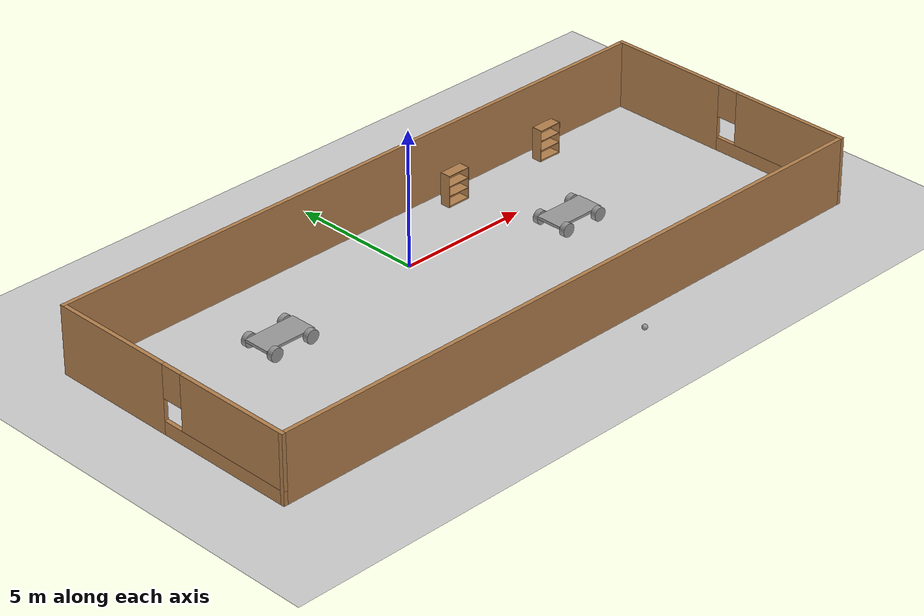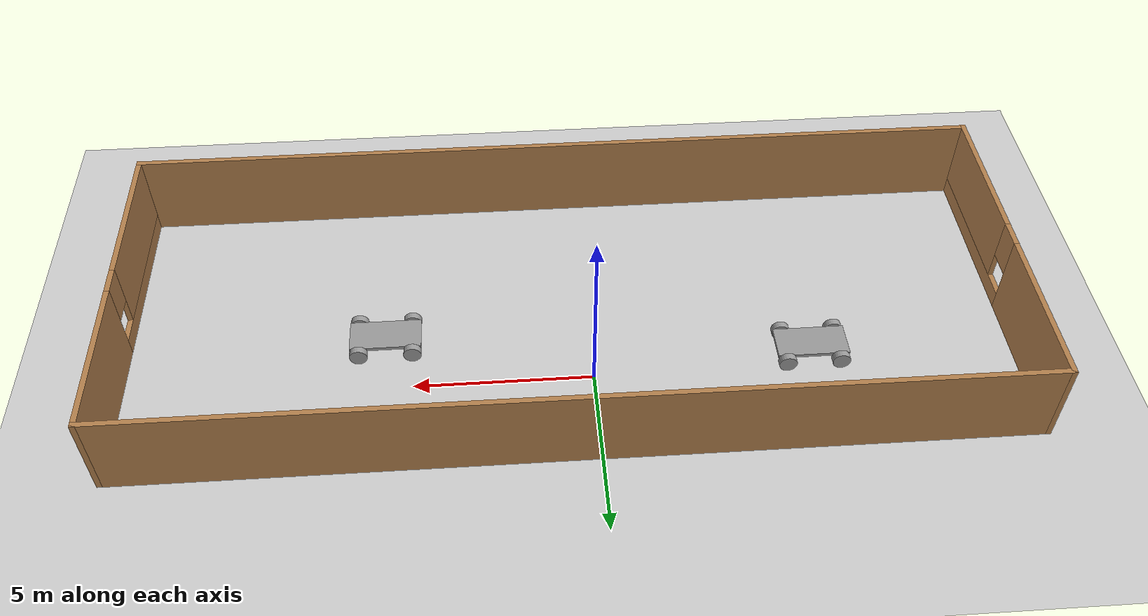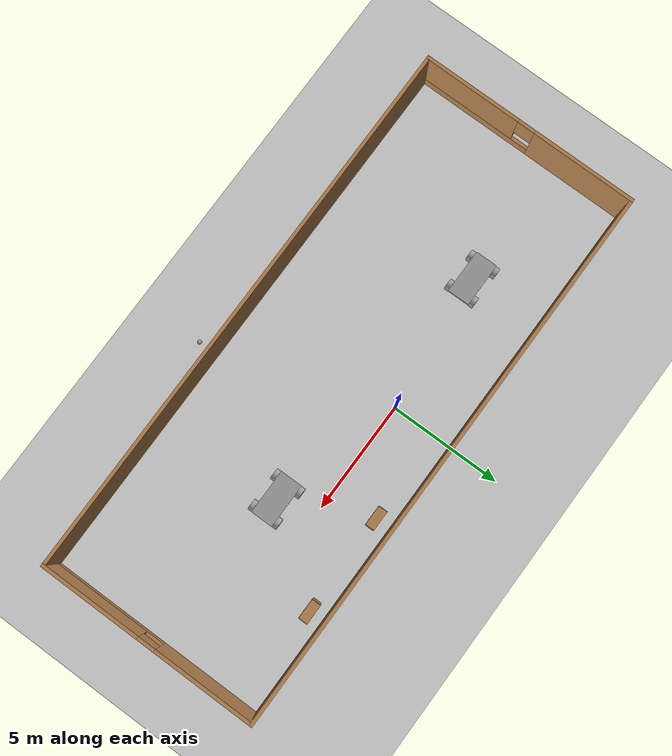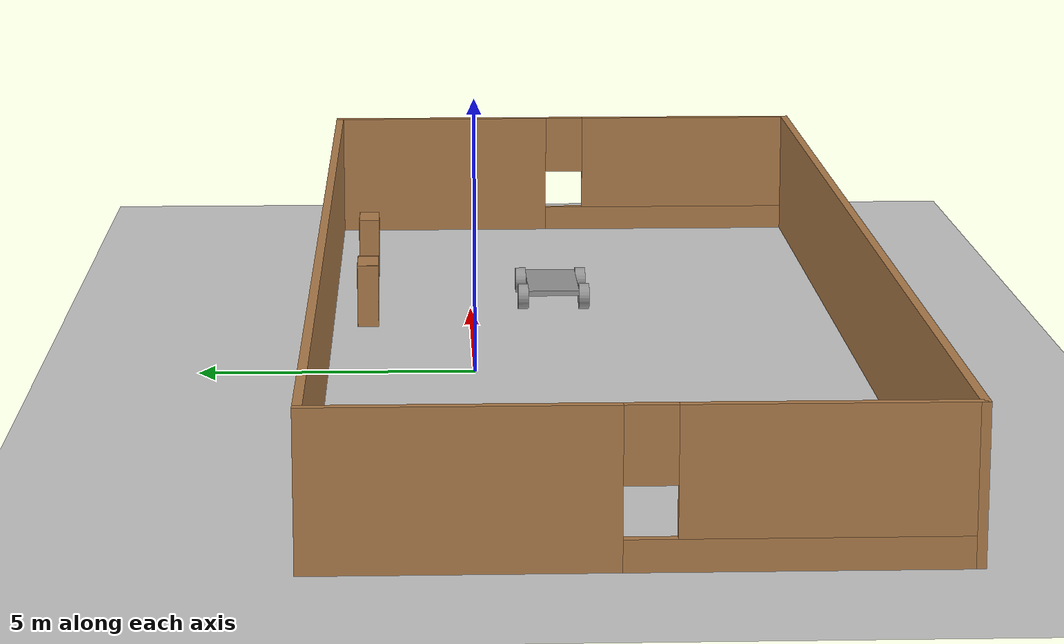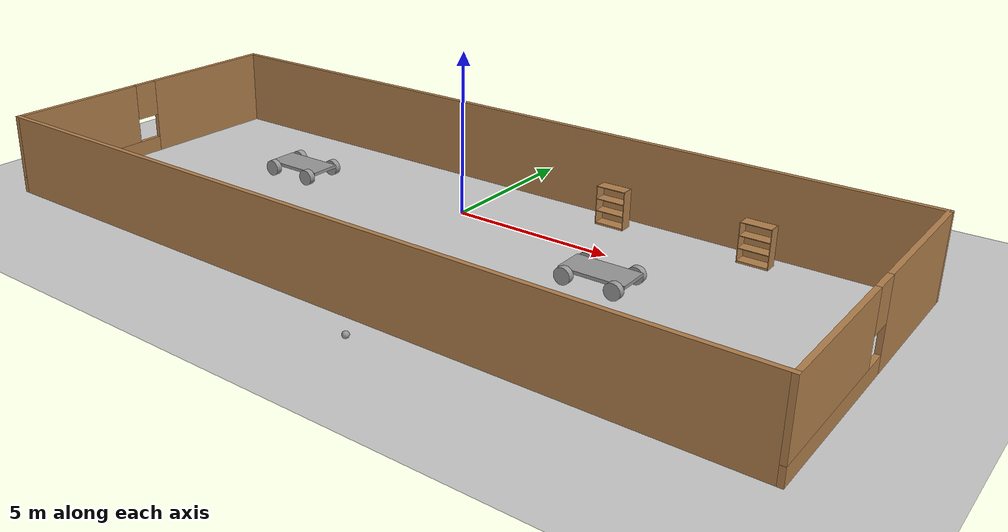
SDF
<sdf version="1.6">
 <world name="default">
  <plugin name="hello" filename="libhello.so"/>
  <light name="sun" type="directional">
   <pose>0 0 10 0 -0 0</pose>
   <diffuse>0.8 0.8 0.8 1</diffuse>
   <specular>0.2 0.2 0.2 1</specular>
   <attenuation>
    <range>1000</range>
    <constant>0.9</constant>
    <linear>0.01</linear>
    <quadratic>0.001</quadratic>
   </attenuation>
   <direction>-0.5 0.1 -0.9</direction>
  </light>
  <model name="ground_plane">
   <static>1</static>
   <link name="link">
    <collision name="collision">
     <geometry><plane><normal>0 0 1</normal><size>100 100</size></plane></geometry>
     <surface>
      <contact><collide_bitmask>65535</collide_bitmask></contact>
      <friction><ode><mu>100</mu><mu2>50</mu2></ode></friction>
     </surface>
    </collision>
    <visual name="visual">
     <cast_shadows>0</cast_shadows>
     <geometry><plane><normal>0 0 1</normal><size>100 100</size></plane></geometry>
     <material>
      <script><uri>file://media/materials/scripts/gazebo.material</uri><name>Gazebo/Grey</name></script>
     </material>
    </visual>
   </link>
  </model>
  <gravity>0 0 -9.8</gravity>
  <magnetic_field>6e-06 2.3e-05 -4.2e-05</magnetic_field>
  <atmosphere type="adiabatic"/>
  <physics name="default_physics" default="0" type="ode">
   <max_step_size>0.001</max_step_size>
   <real_time_factor>1</real_time_factor>
   <real_time_update_rate>1000</real_time_update_rate>
  </physics>
  <scene><ambient>0.4 0.4 0.4 1</ambient><background>0.7 0.7 0.7 1</background><shadows>1</shadows></scene>
  <audio><device>default</device></audio>
  <spherical_coordinates>
   <surface_model>EARTH_WGS84</surface_model>
   <latitude_deg>0</latitude_deg>
   <longitude_deg>0</longitude_deg>
   <elevation>0</elevation>
   <heading_deg>0</heading_deg>
  </spherical_coordinates>
  <model name="robot">
   <link name="link_0">
    <inertial>
     <mass>1</mass>
     <inertia>
      <ixx>0.166667</ixx>
      <ixy>0</ixy>
      <ixz>0</ixz>
      <iyy>0.166667</iyy>
      <iyz>0</iyz>
      <izz>0.166667</izz>
     </inertia>
    </inertial>
    <pose>-0.060277 0.077845 0.5 0 -0 0</pose>
    <visual name="visual">
     <geometry><box><size>2 1 0.1</size></box></geometry>
     <material>
      <lighting>1</lighting>
      <script><uri>file://media/materials/scripts/gazebo.material</uri><name>Gazebo/Grey</name></script>
      <shader type="pixel"><normal_map>__default__</normal_map></shader>
      <ambient>0.3 0.3 0.3 1</ambient>
      <diffuse>0.7 0.7 0.7 1</diffuse>
      <specular>0.01 0.01 0.01 1</specular>
      <emissive>0 0 0 1</emissive>
     </material>
    </visual>
    <collision name="collision_5">
     <pose>0 0 0.5 0 -0 0</pose>
     <geometry><box><size>1.5 0.8 0.8</size></box></geometry>
     <surface>
      <friction>
       <ode><mu>1</mu><mu2>1</mu2><fdir1>0 0 0</fdir1><slip1>0</slip1><slip2>0</slip2></ode>
       <torsional>
        <coefficient>1</coefficient>
        <patch_radius>0</patch_radius>
        <surface_radius>0</surface_radius>
        <use_patch_radius>1</use_patch_radius>
        <ode><slip>0</slip></ode>
       </torsional>
      </friction>
      <bounce><restitution_coefficient>0</restitution_coefficient><threshold>1e+06</threshold></bounce>
      <contact>
       <collide_without_contact>0</collide_without_contact>
       <collide_without_contact_bitmask>1</collide_without_contact_bitmask>
       <collide_bitmask>1</collide_bitmask>
       <ode>
        <soft_cfm>0</soft_cfm>
        <soft_erp>0.2</soft_erp>
        <kp>1e+13</kp>
        <kd>1</kd>
        <max_vel>0.01</max_vel>
        <min_depth>0</min_depth>
       </ode>
       <bullet>
        <split_impulse>1</split_impulse>
        <split_impulse_penetration_threshold>-0.01</split_impulse_penetration_threshold>
        <soft_cfm>0</soft_cfm>
        <soft_erp>0.2</soft_erp>
        <kp>1e+13</kp>
        <kd>1</kd>
       </bullet>
      </contact>
     </surface>
    </collision>
    <collision name="collision">
     <geometry><box><size>2 1 0.1</size></box></geometry>
     <surface>
      <friction>
       <ode><mu>1</mu><mu2>1</mu2><fdir1>0 0 0</fdir1><slip1>0</slip1><slip2>0</slip2></ode>
       <torsional>
        <coefficient>1</coefficient>
        <patch_radius>0</patch_radius>
        <surface_radius>0</surface_radius>
        <use_patch_radius>1</use_patch_radius>
        <ode><slip>0</slip></ode>
       </torsional>
      </friction>
      <bounce><restitution_coefficient>0</restitution_coefficient><threshold>1e+06</threshold></bounce>
      <contact>
       <collide_without_contact>0</collide_without_contact>
       <collide_without_contact_bitmask>1</collide_without_contact_bitmask>
       <collide_bitmask>1</collide_bitmask>
       <ode>
        <soft_cfm>0</soft_cfm>
        <soft_erp>0.2</soft_erp>
        <kp>1e+13</kp>
        <kd>1</kd>
        <max_vel>0.01</max_vel>
        <min_depth>0</min_depth>
       </ode>
       <bullet>
        <split_impulse>1</split_impulse>
        <split_impulse_penetration_threshold>-0.01</split_impulse_penetration_threshold>
        <soft_cfm>0</soft_cfm>
        <soft_erp>0.2</soft_erp>
        <kp>1e+13</kp>
        <kd>1</kd>
       </bullet>
      </contact>
     </surface>
    </collision>
   </link>
   <link name="link_1">
    <inertial>
     <mass>1</mass>
     <inertia><ixx>0.145833</ixx><ixy>0</ixy><ixz>0</ixz><iyy>0.145833</iyy><iyz>0</iyz><izz>0.125</izz></inertia>
    </inertial>
    <pose>-0.810277 -0.522179 0.389986 1.5707 -0 0</pose>
    <visual name="visual">
     <geometry><cylinder><radius>0.25</radius><length>0.2</length></cylinder></geometry>
     <material>
      <lighting>1</lighting>
      <script><uri>file://media/materials/scripts/gazebo.material</uri><name>Gazebo/Grey</name></script>
      <shader type="pixel"><normal_map>__default__</normal_map></shader>
      <ambient>0.3 0.3 0.3 1</ambient>
      <diffuse>0.7 0.7 0.7 1</diffuse>
      <specular>0.01 0.01 0.01 1</specular>
      <emissive>0 0 0 1</emissive>
     </material>
    </visual>
    <collision name="collision">
     <geometry><cylinder><radius>0.25</radius><length>0.2</length></cylinder></geometry>
     <surface>
      <friction>
       <ode><mu>1</mu><mu2>1</mu2><fdir1>0 0 0</fdir1><slip1>0</slip1><slip2>0</slip2></ode>
       <torsional>
        <coefficient>1</coefficient>
        <patch_radius>0</patch_radius>
        <surface_radius>0</surface_radius>
        <use_patch_radius>1</use_patch_radius>
        <ode><slip>0</slip></ode>
       </torsional>
      </friction>
      <bounce><restitution_coefficient>0</restitution_coefficient><threshold>1e+06</threshold></bounce>
      <contact>
       <collide_without_contact>0</collide_without_contact>
       <collide_without_contact_bitmask>1</collide_without_contact_bitmask>
       <collide_bitmask>1</collide_bitmask>
       <ode>
        <soft_cfm>0</soft_cfm>
        <soft_erp>0.2</soft_erp>
        <kp>1e+13</kp>
        <kd>1</kd>
        <max_vel>0.01</max_vel>
        <min_depth>0</min_depth>
       </ode>
       <bullet>
        <split_impulse>1</split_impulse>
        <split_impulse_penetration_threshold>-0.01</split_impulse_penetration_threshold>
        <soft_cfm>0</soft_cfm>
        <soft_erp>0.2</soft_erp>
        <kp>1e+13</kp>
        <kd>1</kd>
       </bullet>
      </contact>
     </surface>
    </collision>
   </link>
   <link name="link_1_clone">
    <inertial>
     <mass>1</mass>
     <inertia><ixx>0.145833</ixx><ixy>0</ixy><ixz>0</ixz><iyy>0.145833</iyy><iyz>0</iyz><izz>0.125</izz></inertia>
    </inertial>
    <pose>-0.810277 0.677869 0.389986 1.5707 -0 0</pose>
    <visual name="visual">
     <geometry><cylinder><radius>0.25</radius><length>0.2</length></cylinder></geometry>
     <material>
      <lighting>1</lighting>
      <script><uri>file://media/materials/scripts/gazebo.material</uri><name>Gazebo/Grey</name></script>
      <shader type="pixel"><normal_map>__default__</normal_map></shader>
      <ambient>0.3 0.3 0.3 1</ambient>
      <diffuse>0.7 0.7 0.7 1</diffuse>
      <specular>0.01 0.01 0.01 1</specular>
      <emissive>0 0 0 1</emissive>
     </material>
    </visual>
    <collision name="collision">
     <geometry><cylinder><radius>0.25</radius><length>0.2</length></cylinder></geometry>
     <surface>
      <friction>
       <ode><mu>1</mu><mu2>1</mu2><fdir1>0 0 0</fdir1><slip1>0</slip1><slip2>0</slip2></ode>
       <torsional>
        <coefficient>1</coefficient>
        <patch_radius>0</patch_radius>
        <surface_radius>0</surface_radius>
        <use_patch_radius>1</use_patch_radius>
        <ode><slip>0</slip></ode>
       </torsional>
      </friction>
      <bounce><restitution_coefficient>0</restitution_coefficient><threshold>1e+06</threshold></bounce>
      <contact>
       <collide_without_contact>0</collide_without_contact>
       <collide_without_contact_bitmask>1</collide_without_contact_bitmask>
       <collide_bitmask>1</collide_bitmask>
       <ode>
        <soft_cfm>0</soft_cfm>
        <soft_erp>0.2</soft_erp>
        <kp>1e+13</kp>
        <kd>1</kd>
        <max_vel>0.01</max_vel>
        <min_depth>0</min_depth>
       </ode>
       <bullet>
        <split_impulse>1</split_impulse>
        <split_impulse_penetration_threshold>-0.01</split_impulse_penetration_threshold>
        <soft_cfm>0</soft_cfm>
        <soft_erp>0.2</soft_erp>
        <kp>1e+13</kp>
        <kd>1</kd>
       </bullet>
      </contact>
     </surface>
    </collision>
   </link>
   <link name="link_1_clone_0">
    <inertial>
     <mass>1</mass>
     <inertia><ixx>0.145833</ixx><ixy>0</ixy><ixz>0</ixz><iyy>0.145833</iyy><iyz>0</iyz><izz>0.125</izz></inertia>
    </inertial>
    <pose>0.689723 -0.522179 0.389986 1.5707 -0 0</pose>
    <visual name="visual">
     <geometry><cylinder><radius>0.25</radius><length>0.2</length></cylinder></geometry>
     <material>
      <lighting>1</lighting>
      <script><uri>file://media/materials/scripts/gazebo.material</uri><name>Gazebo/Grey</name></script>
      <shader type="pixel"><normal_map>__default__</normal_map></shader>
      <ambient>0.3 0.3 0.3 1</ambient>
      <diffuse>0.7 0.7 0.7 1</diffuse>
      <specular>0.01 0.01 0.01 1</specular>
      <emissive>0 0 0 1</emissive>
     </material>
    </visual>
    <collision name="collision">
     <geometry><cylinder><radius>0.25</radius><length>0.2</length></cylinder></geometry>
     <surface>
      <friction>
       <ode><mu>1</mu><mu2>1</mu2><fdir1>0 0 0</fdir1><slip1>0</slip1><slip2>0</slip2></ode>
       <torsional>
        <coefficient>1</coefficient>
        <patch_radius>0</patch_radius>
        <surface_radius>0</surface_radius>
        <use_patch_radius>1</use_patch_radius>
        <ode><slip>0</slip></ode>
       </torsional>
      </friction>
      <bounce><restitution_coefficient>0</restitution_coefficient><threshold>1e+06</threshold></bounce>
      <contact>
       <collide_without_contact>0</collide_without_contact>
       <collide_without_contact_bitmask>1</collide_without_contact_bitmask>
       <collide_bitmask>1</collide_bitmask>
       <ode>
        <soft_cfm>0</soft_cfm>
        <soft_erp>0.2</soft_erp>
        <kp>1e+13</kp>
        <kd>1</kd>
        <max_vel>0.01</max_vel>
        <min_depth>0</min_depth>
       </ode>
       <bullet>
        <split_impulse>1</split_impulse>
        <split_impulse_penetration_threshold>-0.01</split_impulse_penetration_threshold>
        <soft_cfm>0</soft_cfm>
        <soft_erp>0.2</soft_erp>
        <kp>1e+13</kp>
        <kd>1</kd>
       </bullet>
      </contact>
     </surface>
    </collision>
   </link>
   <link name="link_1_clone_0_clone">
    <inertial>
     <mass>1</mass>
     <inertia><ixx>0.145833</ixx><ixy>0</ixy><ixz>0</ixz><iyy>0.145833</iyy><iyz>0</iyz><izz>0.125</izz></inertia>
    </inertial>
    <pose>0.689723 0.677869 0.389986 1.5707 -0 0</pose>
    <visual name="visual">
     <geometry><cylinder><radius>0.25</radius><length>0.2</length></cylinder></geometry>
     <material>
      <lighting>1</lighting>
      <script><uri>file://media/materials/scripts/gazebo.material</uri><name>Gazebo/Grey</name></script>
      <shader type="pixel"><normal_map>__default__</normal_map></shader>
      <ambient>0.3 0.3 0.3 1</ambient>
      <diffuse>0.7 0.7 0.7 1</diffuse>
      <specular>0.01 0.01 0.01 1</specular>
      <emissive>0 0 0 1</emissive>
     </material>
    </visual>
    <collision name="collision">
     <geometry><cylinder><radius>0.25</radius><length>0.2</length></cylinder></geometry>
     <surface>
      <friction>
       <ode><mu>1</mu><mu2>1</mu2><fdir1>0 0 0</fdir1><slip1>0</slip1><slip2>0</slip2></ode>
       <torsional>
        <coefficient>1</coefficient>
        <patch_radius>0</patch_radius>
        <surface_radius>0</surface_radius>
        <use_patch_radius>1</use_patch_radius>
        <ode><slip>0</slip></ode>
       </torsional>
      </friction>
      <bounce><restitution_coefficient>0</restitution_coefficient><threshold>1e+06</threshold></bounce>
      <contact>
       <collide_without_contact>0</collide_without_contact>
       <collide_without_contact_bitmask>1</collide_without_contact_bitmask>
       <collide_bitmask>1</collide_bitmask>
       <ode>
        <soft_cfm>0</soft_cfm>
        <soft_erp>0.2</soft_erp>
        <kp>1e+13</kp>
        <kd>1</kd>
        <max_vel>0.01</max_vel>
        <min_depth>0</min_depth>
       </ode>
       <bullet>
        <split_impulse>1</split_impulse>
        <split_impulse_penetration_threshold>-0.01</split_impulse_penetration_threshold>
        <soft_cfm>0</soft_cfm>
        <soft_erp>0.2</soft_erp>
        <kp>1e+13</kp>
        <kd>1</kd>
       </bullet>
      </contact>
     </surface>
    </collision>
   </link>
   <joint name="link_0_JOINT_1" type="revolute">
    <parent>link_0</parent>
    <child>link_1</child>
    <axis>
     <xyz>0 0 -1</xyz>
     <limit>
      <lower>-1.79769e+308</lower>
      <upper>1.79769e+308</upper>
      <effort>-1</effort>
      <velocity>-1</velocity>
     </limit>
     <dynamics>
      <spring_reference>0</spring_reference>
      <spring_stiffness>0</spring_stiffness>
      <damping>0</damping>
     </dynamics>
     <use_parent_model_frame>0</use_parent_model_frame>
    </axis>
    <physics>
     <ode><limit><cfm>0</cfm><erp>0.2</erp></limit><suspension><cfm>0</cfm><erp>0.2</erp></suspension></ode>
    </physics>
   </joint>
   <joint name="link_0_JOINT_2" type="revolute">
    <parent>link_0</parent>
    <child>link_1_clone</child>
    <axis>
     <xyz>0 0 1</xyz>
     <limit>
      <lower>-1.79769e+308</lower>
      <upper>1.79769e+308</upper>
      <effort>-1</effort>
      <velocity>-1</velocity>
     </limit>
     <dynamics>
      <spring_reference>0</spring_reference>
      <spring_stiffness>0</spring_stiffness>
      <damping>0</damping>
     </dynamics>
     <use_parent_model_frame>0</use_parent_model_frame>
    </axis>
    <physics>
     <ode><limit><cfm>0</cfm><erp>0.2</erp></limit><suspension><cfm>0</cfm><erp>0.2</erp></suspension></ode>
    </physics>
   </joint>
   <joint name="link_0_JOINT_3" type="revolute">
    <parent>link_0</parent>
    <child>link_1_clone_0</child>
    <axis>
     <xyz>0 0 1</xyz>
     <limit>
      <lower>-1.79769e+308</lower>
      <upper>1.79769e+308</upper>
      <effort>-1</effort>
      <velocity>-1</velocity>
     </limit>
     <dynamics>
      <spring_reference>0</spring_reference>
      <spring_stiffness>0</spring_stiffness>
      <damping>0</damping>
     </dynamics>
     <use_parent_model_frame>0</use_parent_model_frame>
    </axis>
    <physics>
     <ode><limit><cfm>0</cfm><erp>0.2</erp></limit><suspension><cfm>0</cfm><erp>0.2</erp></suspension></ode>
    </physics>
   </joint>
   <joint name="link_0_JOINT_4" type="revolute">
    <parent>link_0</parent>
    <child>link_1_clone_0_clone</child>
    <axis>
     <xyz>0 0 1</xyz>
     <limit>
      <lower>-1.79769e+308</lower>
      <upper>1.79769e+308</upper>
      <effort>-1</effort>
      <velocity>-1</velocity>
     </limit>
     <dynamics>
      <spring_reference>0</spring_reference>
      <spring_stiffness>0</spring_stiffness>
      <damping>0</damping>
     </dynamics>
     <use_parent_model_frame>0</use_parent_model_frame>
    </axis>
    <physics>
     <ode><limit><cfm>0</cfm><erp>0.2</erp></limit><suspension><cfm>0</cfm><erp>0.2</erp></suspension></ode>
    </physics>
   </joint>
   <static>0</static>
   <pose>-6.07164 -0.64736 -0.139979 0 4e-06 0.003123</pose>
  </model>
  <model name="floor">
   <pose>0.5469 -2.18437 0 0 -0 0</pose>
   <link name="Wall_0">
    <pose>-12.425 0 0 0 -0 -1.57075</pose>
    <visual name="Wall_0_Visual_0">
     <pose>-2.63551 0 1.25 0 -0 0</pose>
     <geometry><box><size>4.72898 0.15 2.5</size></box></geometry>
     <material>
      <script><uri>file://media/materials/scripts/gazebo.material</uri><name>Gazebo/Wood</name></script>
      <ambient>0.921569 0.807843 0.615686 1</ambient>
     </material>
     <meta><layer>0</layer></meta>
    </visual>
    <collision name="Wall_0_Collision_0">
     <geometry><box><size>4.72898 0.15 2.5</size></box></geometry>
     <pose>-2.63551 0 1.25 0 -0 0</pose>
    </collision>
    <visual name="Wall_0_Visual_1">
     <pose>2.36449 0 0.25 0 -0 0</pose>
     <geometry><box><size>5.27102 0.15 0.5</size></box></geometry>
     <material>
      <script><uri>file://media/materials/scripts/gazebo.material</uri><name>Gazebo/Wood</name></script>
      <ambient>0.921569 0.807843 0.615686 1</ambient>
     </material>
     <meta><layer>0</layer></meta>
    </visual>
    <collision name="Wall_0_Collision_1">
     <geometry><box><size>5.27102 0.15 0.5</size></box></geometry>
     <pose>2.36449 0 0.25 0 -0 0</pose>
    </collision>
    <visual name="Wall_0_Visual_2">
     <pose>2.76449 0 1.5 0 -0 0</pose>
     <geometry><box><size>4.47102 0.15 2</size></box></geometry>
     <material>
      <script><uri>file://media/materials/scripts/gazebo.material</uri><name>Gazebo/Wood</name></script>
      <ambient>0.921569 0.807843 0.615686 1</ambient>
     </material>
     <meta><layer>0</layer></meta>
    </visual>
    <collision name="Wall_0_Collision_2">
     <geometry><box><size>4.47102 0.15 2</size></box></geometry>
     <pose>2.76449 0 1.5 0 -0 0</pose>
    </collision>
    <visual name="Wall_0_Visual_3">
     <pose>0.128981 0 1.9 0 -0 0</pose>
     <geometry><box><size>0.8 0.15 1.2</size></box></geometry>
     <material>
      <script><uri>file://media/materials/scripts/gazebo.material</uri><name>Gazebo/Wood</name></script>
      <ambient>0.921569 0.807843 0.615686 1</ambient>
     </material>
     <meta><layer>0</layer></meta>
    </visual>
    <collision name="Wall_0_Collision_3">
     <geometry><box><size>0.8 0.15 1.2</size></box></geometry>
     <pose>0.128981 0 1.9 0 -0 0</pose>
    </collision>
   </link>
   <link name="Wall_5">
    <collision name="Wall_5_Collision">
     <geometry><box><size>25 0.15 2.5</size></box></geometry>
     <pose>0 0 1.25 0 -0 0</pose>
    </collision>
    <visual name="Wall_5_Visual">
     <pose>0 0 1.25 0 -0 0</pose>
     <geometry><box><size>25 0.15 2.5</size></box></geometry>
     <material>
      <script><uri>file://media/materials/scripts/gazebo.material</uri><name>Gazebo/Wood</name></script>
      <ambient>0.921569 0.807843 0.615686 1</ambient>
     </material>
     <meta><layer>0</layer></meta>
    </visual>
    <pose>0.00021 -4.92494 0 0 -0 0</pose>
   </link>
   <link name="Wall_7">
    <collision name="Wall_7_Collision">
     <geometry><box><size>25 0.15 2.5</size></box></geometry>
     <pose>0 0 1.25 0 -0 0</pose>
    </collision>
    <visual name="Wall_7_Visual">
     <pose>0 0 1.25 0 -0 0</pose>
     <geometry><box><size>25 0.15 2.5</size></box></geometry>
     <material>
      <script><uri>file://media/materials/scripts/gazebo.material</uri><name>Gazebo/Wood</name></script>
      <ambient>0.921569 0.807843 0.615686 1</ambient>
     </material>
     <meta><layer>0</layer></meta>
    </visual>
    <pose>-0.000209 4.92494 0 0 -0 0</pose>
   </link>
   <link name="Wall_9">
    <pose>12.425 0 0 0 -0 -1.57075</pose>
    <visual name="Wall_9_Visual_0">
     <pose>-2.68871 0 1.25 0 -0 0</pose>
     <geometry><box><size>4.62258 0.15 2.5</size></box></geometry>
     <material>
      <script><uri>file://media/materials/scripts/gazebo.material</uri><name>Gazebo/Wood</name></script>
      <ambient>1 1 1 1</ambient>
     </material>
     <meta><layer>0</layer></meta>
    </visual>
    <collision name="Wall_9_Collision_0">
     <geometry><box><size>4.62258 0.15 2.5</size></box></geometry>
     <pose>-2.68871 0 1.25 0 -0 0</pose>
    </collision>
    <visual name="Wall_9_Visual_1">
     <pose>2.31129 0 0.25 0 -0 0</pose>
     <geometry><box><size>5.37742 0.15 0.5</size></box></geometry>
     <material>
      <script><uri>file://media/materials/scripts/gazebo.material</uri><name>Gazebo/Wood</name></script>
      <ambient>1 1 1 1</ambient>
     </material>
     <meta><layer>0</layer></meta>
    </visual>
    <collision name="Wall_9_Collision_1">
     <geometry><box><size>5.37742 0.15 0.5</size></box></geometry>
     <pose>2.31129 0 0.25 0 -0 0</pose>
    </collision>
    <visual name="Wall_9_Visual_2">
     <pose>2.71129 0 1.5 0 -0 0</pose>
     <geometry><box><size>4.57742 0.15 2</size></box></geometry>
     <material>
      <script><uri>file://media/materials/scripts/gazebo.material</uri><name>Gazebo/Wood</name></script>
      <ambient>1 1 1 1</ambient>
     </material>
     <meta><layer>0</layer></meta>
    </visual>
    <collision name="Wall_9_Collision_2">
     <geometry><box><size>4.57742 0.15 2</size></box></geometry>
     <pose>2.71129 0 1.5 0 -0 0</pose>
    </collision>
    <visual name="Wall_9_Visual_3">
     <pose>0.022581 0 1.9 0 -0 0</pose>
     <geometry><box><size>0.8 0.15 1.2</size></box></geometry>
     <material>
      <script><uri>file://media/materials/scripts/gazebo.material</uri><name>Gazebo/Wood</name></script>
      <ambient>1 1 1 1</ambient>
     </material>
     <meta><layer>0</layer></meta>
    </visual>
    <collision name="Wall_9_Collision_3">
     <geometry><box><size>0.8 0.15 1.2</size></box></geometry>
     <pose>0.022581 0 1.9 0 -0 0</pose>
    </collision>
   </link>
   <static>1</static>
  </model>
  <model name="robot_0">
   <model name="robot">
    <link name="link_0">
     <inertial>
      <mass>1</mass>
      <inertia>
       <ixx>0.166667</ixx>
       <ixy>0</ixy>
       <ixz>0</ixz>
       <iyy>0.166667</iyy>
       <iyz>0</iyz>
       <izz>0.166667</izz>
      </inertia>
     </inertial>
     <pose>-0.060277 0.077845 0.5 0 -0 0</pose>
     <visual name="visual">
      <geometry><box><size>2 1 0.1</size></box></geometry>
      <material>
       <lighting>1</lighting>
       <script><uri>file://media/materials/scripts/gazebo.material</uri><name>Gazebo/Grey</name></script>
       <shader type="pixel"><normal_map>__default__</normal_map></shader>
       <ambient>0.3 0.3 0.3 1</ambient>
       <diffuse>0.7 0.7 0.7 1</diffuse>
       <specular>0.01 0.01 0.01 1</specular>
       <emissive>0 0 0 1</emissive>
      </material>
     </visual>
     <collision name="collision_5">
      <pose>0 0 0.5 0 -0 0</pose>
      <geometry><box><size>1.5 0.8 0.8</size></box></geometry>
      <surface>
       <friction>
        <ode><mu>1</mu><mu2>1</mu2><fdir1>0 0 0</fdir1><slip1>0</slip1><slip2>0</slip2></ode>
        <torsional>
         <coefficient>1</coefficient>
         <patch_radius>0</patch_radius>
         <surface_radius>0</surface_radius>
         <use_patch_radius>1</use_patch_radius>
         <ode><slip>0</slip></ode>
        </torsional>
       </friction>
       <bounce><restitution_coefficient>0</restitution_coefficient><threshold>1e+06</threshold></bounce>
       <contact>
        <collide_without_contact>0</collide_without_contact>
        <collide_without_contact_bitmask>1</collide_without_contact_bitmask>
        <collide_bitmask>1</collide_bitmask>
        <ode>
         <soft_cfm>0</soft_cfm>
         <soft_erp>0.2</soft_erp>
         <kp>1e+13</kp>
         <kd>1</kd>
         <max_vel>0.01</max_vel>
         <min_depth>0</min_depth>
        </ode>
        <bullet>
         <split_impulse>1</split_impulse>
         <split_impulse_penetration_threshold>-0.01</split_impulse_penetration_threshold>
         <soft_cfm>0</soft_cfm>
         <soft_erp>0.2</soft_erp>
         <kp>1e+13</kp>
         <kd>1</kd>
        </bullet>
       </contact>
      </surface>
     </collision>
     <collision name="collision">
      <geometry><box><size>2 1 0.1</size></box></geometry>
      <surface>
       <friction>
        <ode><mu>1</mu><mu2>1</mu2><fdir1>0 0 0</fdir1><slip1>0</slip1><slip2>0</slip2></ode>
        <torsional>
         <coefficient>1</coefficient>
         <patch_radius>0</patch_radius>
         <surface_radius>0</surface_radius>
         <use_patch_radius>1</use_patch_radius>
         <ode><slip>0</slip></ode>
        </torsional>
       </friction>
       <bounce><restitution_coefficient>0</restitution_coefficient><threshold>1e+06</threshold></bounce>
       <contact>
        <collide_without_contact>0</collide_without_contact>
        <collide_without_contact_bitmask>1</collide_without_contact_bitmask>
        <collide_bitmask>1</collide_bitmask>
        <ode>
         <soft_cfm>0</soft_cfm>
         <soft_erp>0.2</soft_erp>
         <kp>1e+13</kp>
         <kd>1</kd>
         <max_vel>0.01</max_vel>
         <min_depth>0</min_depth>
        </ode>
        <bullet>
         <split_impulse>1</split_impulse>
         <split_impulse_penetration_threshold>-0.01</split_impulse_penetration_threshold>
         <soft_cfm>0</soft_cfm>
         <soft_erp>0.2</soft_erp>
         <kp>1e+13</kp>
         <kd>1</kd>
        </bullet>
       </contact>
      </surface>
     </collision>
    </link>
    <link name="link_1">
     <inertial>
      <mass>1</mass>
      <inertia><ixx>0.145833</ixx><ixy>0</ixy><ixz>0</ixz><iyy>0.145833</iyy><iyz>0</iyz><izz>0.125</izz></inertia>
     </inertial>
     <pose>-0.810277 -0.522179 0.389986 1.5707 -0 0</pose>
     <visual name="visual">
      <geometry><cylinder><radius>0.25</radius><length>0.2</length></cylinder></geometry>
      <material>
       <lighting>1</lighting>
       <script><uri>file://media/materials/scripts/gazebo.material</uri><name>Gazebo/Grey</name></script>
       <shader type="pixel"><normal_map>__default__</normal_map></shader>
       <ambient>0.3 0.3 0.3 1</ambient>
       <diffuse>0.7 0.7 0.7 1</diffuse>
       <specular>0.01 0.01 0.01 1</specular>
       <emissive>0 0 0 1</emissive>
      </material>
     </visual>
     <collision name="collision">
      <geometry><cylinder><radius>0.25</radius><length>0.2</length></cylinder></geometry>
      <surface>
       <friction>
        <ode><mu>1</mu><mu2>1</mu2><fdir1>0 0 0</fdir1><slip1>0</slip1><slip2>0</slip2></ode>
        <torsional>
         <coefficient>1</coefficient>
         <patch_radius>0</patch_radius>
         <surface_radius>0</surface_radius>
         <use_patch_radius>1</use_patch_radius>
         <ode><slip>0</slip></ode>
        </torsional>
       </friction>
       <bounce><restitution_coefficient>0</restitution_coefficient><threshold>1e+06</threshold></bounce>
       <contact>
        <collide_without_contact>0</collide_without_contact>
        <collide_without_contact_bitmask>1</collide_without_contact_bitmask>
        <collide_bitmask>1</collide_bitmask>
        <ode>
         <soft_cfm>0</soft_cfm>
         <soft_erp>0.2</soft_erp>
         <kp>1e+13</kp>
         <kd>1</kd>
         <max_vel>0.01</max_vel>
         <min_depth>0</min_depth>
        </ode>
        <bullet>
         <split_impulse>1</split_impulse>
         <split_impulse_penetration_threshold>-0.01</split_impulse_penetration_threshold>
         <soft_cfm>0</soft_cfm>
         <soft_erp>0.2</soft_erp>
         <kp>1e+13</kp>
         <kd>1</kd>
        </bullet>
       </contact>
      </surface>
     </collision>
    </link>
    <link name="link_1_clone">
     <inertial>
      <mass>1</mass>
      <inertia><ixx>0.145833</ixx><ixy>0</ixy><ixz>0</ixz><iyy>0.145833</iyy><iyz>0</iyz><izz>0.125</izz></inertia>
     </inertial>
     <pose>-0.810277 0.677869 0.389986 1.5707 -0 0</pose>
     <visual name="visual">
      <geometry><cylinder><radius>0.25</radius><length>0.2</length></cylinder></geometry>
      <material>
       <lighting>1</lighting>
       <script><uri>file://media/materials/scripts/gazebo.material</uri><name>Gazebo/Grey</name></script>
       <shader type="pixel"><normal_map>__default__</normal_map></shader>
       <ambient>0.3 0.3 0.3 1</ambient>
       <diffuse>0.7 0.7 0.7 1</diffuse>
       <specular>0.01 0.01 0.01 1</specular>
       <emissive>0 0 0 1</emissive>
      </material>
     </visual>
     <collision name="collision">
      <geometry><cylinder><radius>0.25</radius><length>0.2</length></cylinder></geometry>
      <surface>
       <friction>
        <ode><mu>1</mu><mu2>1</mu2><fdir1>0 0 0</fdir1><slip1>0</slip1><slip2>0</slip2></ode>
        <torsional>
         <coefficient>1</coefficient>
         <patch_radius>0</patch_radius>
         <surface_radius>0</surface_radius>
         <use_patch_radius>1</use_patch_radius>
         <ode><slip>0</slip></ode>
        </torsional>
       </friction>
       <bounce><restitution_coefficient>0</restitution_coefficient><threshold>1e+06</threshold></bounce>
       <contact>
        <collide_without_contact>0</collide_without_contact>
        <collide_without_contact_bitmask>1</collide_without_contact_bitmask>
        <collide_bitmask>1</collide_bitmask>
        <ode>
         <soft_cfm>0</soft_cfm>
         <soft_erp>0.2</soft_erp>
         <kp>1e+13</kp>
         <kd>1</kd>
         <max_vel>0.01</max_vel>
         <min_depth>0</min_depth>
        </ode>
        <bullet>
         <split_impulse>1</split_impulse>
         <split_impulse_penetration_threshold>-0.01</split_impulse_penetration_threshold>
         <soft_cfm>0</soft_cfm>
         <soft_erp>0.2</soft_erp>
         <kp>1e+13</kp>
         <kd>1</kd>
        </bullet>
       </contact>
      </surface>
     </collision>
    </link>
    <link name="link_1_clone_0">
     <inertial>
      <mass>1</mass>
      <inertia><ixx>0.145833</ixx><ixy>0</ixy><ixz>0</ixz><iyy>0.145833</iyy><iyz>0</iyz><izz>0.125</izz></inertia>
     </inertial>
     <pose>0.689723 -0.522179 0.389986 1.5707 -0 0</pose>
     <visual name="visual">
      <geometry><cylinder><radius>0.25</radius><length>0.2</length></cylinder></geometry>
      <material>
       <lighting>1</lighting>
       <script><uri>file://media/materials/scripts/gazebo.material</uri><name>Gazebo/Grey</name></script>
       <shader type="pixel"><normal_map>__default__</normal_map></shader>
       <ambient>0.3 0.3 0.3 1</ambient>
       <diffuse>0.7 0.7 0.7 1</diffuse>
       <specular>0.01 0.01 0.01 1</specular>
       <emissive>0 0 0 1</emissive>
      </material>
     </visual>
     <collision name="collision">
      <geometry><cylinder><radius>0.25</radius><length>0.2</length></cylinder></geometry>
      <surface>
       <friction>
        <ode><mu>1</mu><mu2>1</mu2><fdir1>0 0 0</fdir1><slip1>0</slip1><slip2>0</slip2></ode>
        <torsional>
         <coefficient>1</coefficient>
         <patch_radius>0</patch_radius>
         <surface_radius>0</surface_radius>
         <use_patch_radius>1</use_patch_radius>
         <ode><slip>0</slip></ode>
        </torsional>
       </friction>
       <bounce><restitution_coefficient>0</restitution_coefficient><threshold>1e+06</threshold></bounce>
       <contact>
        <collide_without_contact>0</collide_without_contact>
        <collide_without_contact_bitmask>1</collide_without_contact_bitmask>
        <collide_bitmask>1</collide_bitmask>
        <ode>
         <soft_cfm>0</soft_cfm>
         <soft_erp>0.2</soft_erp>
         <kp>1e+13</kp>
         <kd>1</kd>
         <max_vel>0.01</max_vel>
         <min_depth>0</min_depth>
        </ode>
        <bullet>
         <split_impulse>1</split_impulse>
         <split_impulse_penetration_threshold>-0.01</split_impulse_penetration_threshold>
         <soft_cfm>0</soft_cfm>
         <soft_erp>0.2</soft_erp>
         <kp>1e+13</kp>
         <kd>1</kd>
        </bullet>
       </contact>
      </surface>
     </collision>
    </link>
    <link name="link_1_clone_0_clone">
     <inertial>
      <mass>1</mass>
      <inertia><ixx>0.145833</ixx><ixy>0</ixy><ixz>0</ixz><iyy>0.145833</iyy><iyz>0</iyz><izz>0.125</izz></inertia>
     </inertial>
     <pose>0.689723 0.677869 0.389986 1.5707 -0 0</pose>
     <visual name="visual">
      <geometry><cylinder><radius>0.25</radius><length>0.2</length></cylinder></geometry>
      <material>
       <lighting>1</lighting>
       <script><uri>file://media/materials/scripts/gazebo.material</uri><name>Gazebo/Grey</name></script>
       <shader type="pixel"><normal_map>__default__</normal_map></shader>
       <ambient>0.3 0.3 0.3 1</ambient>
       <diffuse>0.7 0.7 0.7 1</diffuse>
       <specular>0.01 0.01 0.01 1</specular>
       <emissive>0 0 0 1</emissive>
      </material>
     </visual>
     <collision name="collision">
      <geometry><cylinder><radius>0.25</radius><length>0.2</length></cylinder></geometry>
      <surface>
       <friction>
        <ode><mu>1</mu><mu2>1</mu2><fdir1>0 0 0</fdir1><slip1>0</slip1><slip2>0</slip2></ode>
        <torsional>
         <coefficient>1</coefficient>
         <patch_radius>0</patch_radius>
         <surface_radius>0</surface_radius>
         <use_patch_radius>1</use_patch_radius>
         <ode><slip>0</slip></ode>
        </torsional>
       </friction>
       <bounce><restitution_coefficient>0</restitution_coefficient><threshold>1e+06</threshold></bounce>
       <contact>
        <collide_without_contact>0</collide_without_contact>
        <collide_without_contact_bitmask>1</collide_without_contact_bitmask>
        <collide_bitmask>1</collide_bitmask>
        <ode>
         <soft_cfm>0</soft_cfm>
         <soft_erp>0.2</soft_erp>
         <kp>1e+13</kp>
         <kd>1</kd>
         <max_vel>0.01</max_vel>
         <min_depth>0</min_depth>
        </ode>
        <bullet>
         <split_impulse>1</split_impulse>
         <split_impulse_penetration_threshold>-0.01</split_impulse_penetration_threshold>
         <soft_cfm>0</soft_cfm>
         <soft_erp>0.2</soft_erp>
         <kp>1e+13</kp>
         <kd>1</kd>
        </bullet>
       </contact>
      </surface>
     </collision>
    </link>
    <joint name="link_0_JOINT_1" type="revolute">
     <parent>link_0</parent>
     <child>link_1</child>
     <axis>
      <xyz>0 0 -1</xyz>
      <limit>
       <lower>-1.79769e+308</lower>
       <upper>1.79769e+308</upper>
       <effort>-1</effort>
       <velocity>-1</velocity>
      </limit>
      <dynamics>
       <spring_reference>0</spring_reference>
       <spring_stiffness>0</spring_stiffness>
       <damping>0</damping>
      </dynamics>
      <use_parent_model_frame>0</use_parent_model_frame>
     </axis>
     <physics>
      <ode><limit><cfm>0</cfm><erp>0.2</erp></limit><suspension><cfm>0</cfm><erp>0.2</erp></suspension></ode>
     </physics>
    </joint>
    <joint name="link_0_JOINT_2" type="revolute">
     <parent>link_0</parent>
     <child>link_1_clone</child>
     <axis>
      <xyz>0 0 1</xyz>
      <limit>
       <lower>-1.79769e+308</lower>
       <upper>1.79769e+308</upper>
       <effort>-1</effort>
       <velocity>-1</velocity>
      </limit>
      <dynamics>
       <spring_reference>0</spring_reference>
       <spring_stiffness>0</spring_stiffness>
       <damping>0</damping>
      </dynamics>
      <use_parent_model_frame>0</use_parent_model_frame>
     </axis>
     <physics>
      <ode><limit><cfm>0</cfm><erp>0.2</erp></limit><suspension><cfm>0</cfm><erp>0.2</erp></suspension></ode>
     </physics>
    </joint>
    <joint name="link_0_JOINT_3" type="revolute">
     <parent>link_0</parent>
     <child>link_1_clone_0</child>
     <axis>
      <xyz>0 0 1</xyz>
      <limit>
       <lower>-1.79769e+308</lower>
       <upper>1.79769e+308</upper>
       <effort>-1</effort>
       <velocity>-1</velocity>
      </limit>
      <dynamics>
       <spring_reference>0</spring_reference>
       <spring_stiffness>0</spring_stiffness>
       <damping>0</damping>
      </dynamics>
      <use_parent_model_frame>0</use_parent_model_frame>
     </axis>
     <physics>
      <ode><limit><cfm>0</cfm><erp>0.2</erp></limit><suspension><cfm>0</cfm><erp>0.2</erp></suspension></ode>
     </physics>
    </joint>
    <joint name="link_0_JOINT_4" type="revolute">
     <parent>link_0</parent>
     <child>link_1_clone_0_clone</child>
     <axis>
      <xyz>0 0 1</xyz>
      <limit>
       <lower>-1.79769e+308</lower>
       <upper>1.79769e+308</upper>
       <effort>-1</effort>
       <velocity>-1</velocity>
      </limit>
      <dynamics>
       <spring_reference>0</spring_reference>
       <spring_stiffness>0</spring_stiffness>
       <damping>0</damping>
      </dynamics>
      <use_parent_model_frame>0</use_parent_model_frame>
     </axis>
     <physics>
      <ode><limit><cfm>0</cfm><erp>0.2</erp></limit><suspension><cfm>0</cfm><erp>0.2</erp></suspension></ode>
     </physics>
    </joint>
    <static>0</static>
   </model>
   <static>0</static>
   <pose>5.82249 -1.7174 -0.13998 0 -5e-06 0.002883</pose>
  </model>
  <model name="bookshelf">
   <static>1</static>
   <link name="link">
    <inertial><mass>1</mass></inertial>
    <collision name="back">
     <pose>0 0.005 0.6 0 -0 0</pose>
     <geometry><box><size>0.9 0.01 1.2</size></box></geometry>
    </collision>
    <visual name="visual1">
     <pose>0 0.005 0.6 0 -0 0</pose>
     <geometry><box><size>0.9 0.01 1.2</size></box></geometry>
     <material>
      <script><uri>file://media/materials/scripts/gazebo.material</uri><name>Gazebo/Wood</name></script>
     </material>
    </visual>
    <collision name="left_side">
     <pose>0.45 -0.195 0.6 0 -0 0</pose>
     <geometry><box><size>0.02 0.4 1.2</size></box></geometry>
    </collision>
    <visual name="visual2">
     <pose>0.45 -0.195 0.6 0 -0 0</pose>
     <geometry><box><size>0.02 0.4 1.2</size></box></geometry>
     <material>
      <script><uri>file://media/materials/scripts/gazebo.material</uri><name>Gazebo/Wood</name></script>
     </material>
    </visual>
    <collision name="right_side">
     <pose>-0.45 -0.195 0.6 0 -0 0</pose>
     <geometry><box><size>0.02 0.4 1.2</size></box></geometry>
    </collision>
    <visual name="visual3">
     <pose>-0.45 -0.195 0.6 0 -0 0</pose>
     <geometry><box><size>0.02 0.4 1.2</size></box></geometry>
     <material>
      <script><uri>file://media/materials/scripts/gazebo.material</uri><name>Gazebo/Wood</name></script>
     </material>
    </visual>
    <collision name="bottom">
     <pose>0 -0.195 0.03 0 -0 0</pose>
     <geometry><box><size>0.88 0.4 0.06</size></box></geometry>
    </collision>
    <visual name="visual4">
     <pose>0 -0.195 0.03 0 -0 0</pose>
     <geometry><box><size>0.88 0.4 0.06</size></box></geometry>
     <material>
      <script><uri>file://media/materials/scripts/gazebo.material</uri><name>Gazebo/Wood</name></script>
     </material>
    </visual>
    <collision name="top">
     <pose>0 -0.195 1.19 0 -0 0</pose>
     <geometry><box><size>0.88 0.4 0.02</size></box></geometry>
    </collision>
    <visual name="visual5">
     <pose>0 -0.195 1.19 0 -0 0</pose>
     <geometry><box><size>0.88 0.4 0.02</size></box></geometry>
     <material>
      <script><uri>file://media/materials/scripts/gazebo.material</uri><name>Gazebo/Wood</name></script>
     </material>
    </visual>
    <collision name="low_shelf">
     <pose>0 -0.195 0.43 0 -0 0</pose>
     <geometry><box><size>0.88 0.4 0.02</size></box></geometry>
    </collision>
    <visual name="visual6">
     <pose>0 -0.195 0.43 0 -0 0</pose>
     <geometry><box><size>0.88 0.4 0.02</size></box></geometry>
     <material>
      <script><uri>file://media/materials/scripts/gazebo.material</uri><name>Gazebo/Wood</name></script>
     </material>
    </visual>
    <collision name="high_shelf">
     <pose>0 -0.195 0.8 0 -0 0</pose>
     <geometry><box><size>0.88 0.4 0.02</size></box></geometry>
    </collision>
    <visual name="visual7">
     <pose>0 -0.195 0.8 0 -0 0</pose>
     <geometry><box><size>0.88 0.4 0.02</size></box></geometry>
     <material>
      <script><uri>file://media/materials/scripts/gazebo.material</uri><name>Gazebo/Wood</name></script>
     </material>
    </visual>
   </link>
   <pose>4.04063 2.19109 0 0 -0 0</pose>
  </model>
  <model name="bookshelf_0">
   <static>1</static>
   <link name="link">
    <inertial><mass>1</mass></inertial>
    <collision name="back">
     <pose>0 0.005 0.6 0 -0 0</pose>
     <geometry><box><size>0.9 0.01 1.2</size></box></geometry>
    </collision>
    <visual name="visual1">
     <pose>0 0.005 0.6 0 -0 0</pose>
     <geometry><box><size>0.9 0.01 1.2</size></box></geometry>
     <material>
      <script><uri>file://media/materials/scripts/gazebo.material</uri><name>Gazebo/Wood</name></script>
     </material>
    </visual>
    <collision name="left_side">
     <pose>0.45 -0.195 0.6 0 -0 0</pose>
     <geometry><box><size>0.02 0.4 1.2</size></box></geometry>
    </collision>
    <visual name="visual2">
     <pose>0.45 -0.195 0.6 0 -0 0</pose>
     <geometry><box><size>0.02 0.4 1.2</size></box></geometry>
     <material>
      <script><uri>file://media/materials/scripts/gazebo.material</uri><name>Gazebo/Wood</name></script>
     </material>
    </visual>
    <collision name="right_side">
     <pose>-0.45 -0.195 0.6 0 -0 0</pose>
     <geometry><box><size>0.02 0.4 1.2</size></box></geometry>
    </collision>
    <visual name="visual3">
     <pose>-0.45 -0.195 0.6 0 -0 0</pose>
     <geometry><box><size>0.02 0.4 1.2</size></box></geometry>
     <material>
      <script><uri>file://media/materials/scripts/gazebo.material</uri><name>Gazebo/Wood</name></script>
     </material>
    </visual>
    <collision name="bottom">
     <pose>0 -0.195 0.03 0 -0 0</pose>
     <geometry><box><size>0.88 0.4 0.06</size></box></geometry>
    </collision>
    <visual name="visual4">
     <pose>0 -0.195 0.03 0 -0 0</pose>
     <geometry><box><size>0.88 0.4 0.06</size></box></geometry>
     <material>
      <script><uri>file://media/materials/scripts/gazebo.material</uri><name>Gazebo/Wood</name></script>
     </material>
    </visual>
    <collision name="top">
     <pose>0 -0.195 1.19 0 -0 0</pose>
     <geometry><box><size>0.88 0.4 0.02</size></box></geometry>
    </collision>
    <visual name="visual5">
     <pose>0 -0.195 1.19 0 -0 0</pose>
     <geometry><box><size>0.88 0.4 0.02</size></box></geometry>
     <material>
      <script><uri>file://media/materials/scripts/gazebo.material</uri><name>Gazebo/Wood</name></script>
     </material>
    </visual>
    <collision name="low_shelf">
     <pose>0 -0.195 0.43 0 -0 0</pose>
     <geometry><box><size>0.88 0.4 0.02</size></box></geometry>
    </collision>
    <visual name="visual6">
     <pose>0 -0.195 0.43 0 -0 0</pose>
     <geometry><box><size>0.88 0.4 0.02</size></box></geometry>
     <material>
      <script><uri>file://media/materials/scripts/gazebo.material</uri><name>Gazebo/Wood</name></script>
     </material>
    </visual>
    <collision name="high_shelf">
     <pose>0 -0.195 0.8 0 -0 0</pose>
     <geometry><box><size>0.88 0.4 0.02</size></box></geometry>
    </collision>
    <visual name="visual7">
     <pose>0 -0.195 0.8 0 -0 0</pose>
     <geometry><box><size>0.88 0.4 0.02</size></box></geometry>
     <material>
      <script><uri>file://media/materials/scripts/gazebo.material</uri><name>Gazebo/Wood</name></script>
     </material>
    </visual>
   </link>
   <pose>8.46525 2.23455 0 0 -0 0</pose>
  </model>
  <model name="my_ball">
   <link name="link_0">
    <inertial>
     <mass>1</mass>
     <inertia><ixx>0.1</ixx><ixy>0</ixy><ixz>0</ixz><iyy>0.1</iyy><iyz>0</iyz><izz>0.1</izz></inertia>
    </inertial>
    <visual name="visual">
     <geometry><sphere><radius>0.1</radius></sphere></geometry>
     <material>
      <lighting>1</lighting>
      <script><uri>file://media/materials/scripts/gazebo.material</uri><name>Gazebo/Grey</name></script>
      <shader type="pixel"><normal_map>__default__</normal_map></shader>
      <ambient>1 1 1 1</ambient>
      <diffuse>1 1 1 1</diffuse>
      <specular>1 1 1 1</specular>
      <emissive>1 1 1 1</emissive>
     </material>
    </visual>
    <collision name="collision">
     <geometry><sphere><radius>0.1</radius></sphere></geometry>
     <surface>
      <friction>
       <ode><mu>1</mu><mu2>1</mu2><fdir1>0 0 0</fdir1><slip1>0</slip1><slip2>0</slip2></ode>
       <torsional>
        <coefficient>1</coefficient>
        <patch_radius>0</patch_radius>
        <surface_radius>0</surface_radius>
        <use_patch_radius>1</use_patch_radius>
        <ode><slip>0</slip></ode>
       </torsional>
      </friction>
      <bounce><restitution_coefficient>0</restitution_coefficient><threshold>1e+06</threshold></bounce>
      <contact>
       <collide_without_contact>0</collide_without_contact>
       <collide_without_contact_bitmask>1</collide_without_contact_bitmask>
       <collide_bitmask>1</collide_bitmask>
       <ode>
        <soft_cfm>0</soft_cfm>
        <soft_erp>0.2</soft_erp>
        <kp>1e+13</kp>
        <kd>1</kd>
        <max_vel>0.01</max_vel>
        <min_depth>0</min_depth>
       </ode>
       <bullet>
        <split_impulse>1</split_impulse>
        <split_impulse_penetration_threshold>-0.01</split_impulse_penetration_threshold>
        <soft_cfm>0</soft_cfm>
        <soft_erp>0.2</soft_erp>
        <kp>1e+13</kp>
        <kd>1</kd>
       </bullet>
      </contact>
     </surface>
    </collision>
   </link>
   <static>0</static>
   <pose>2.54022 -7.98147 0.1 0 -0 0</pose>
  </model>
 </world>
</sdf>
